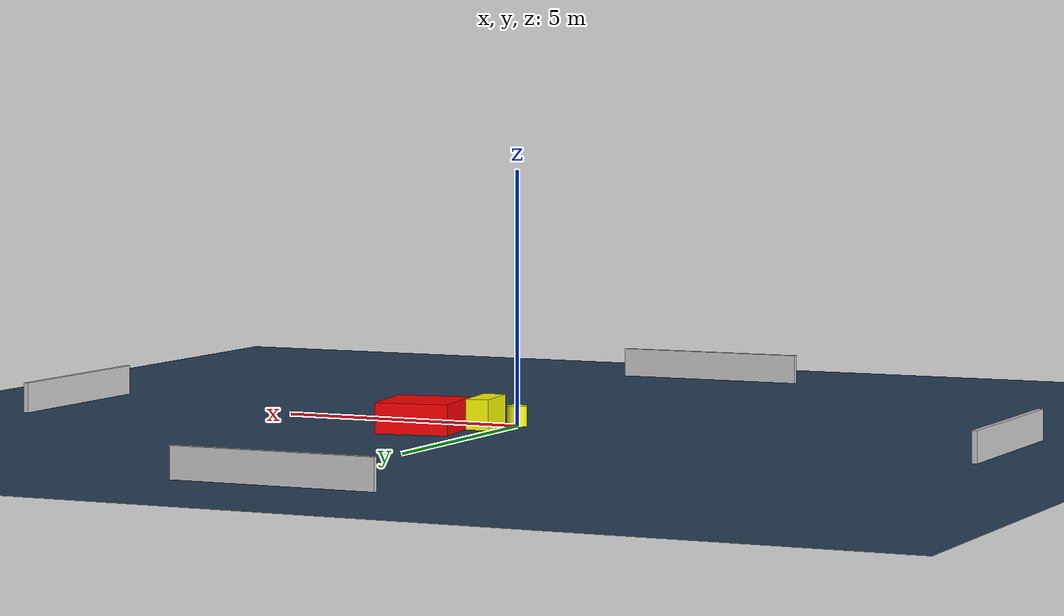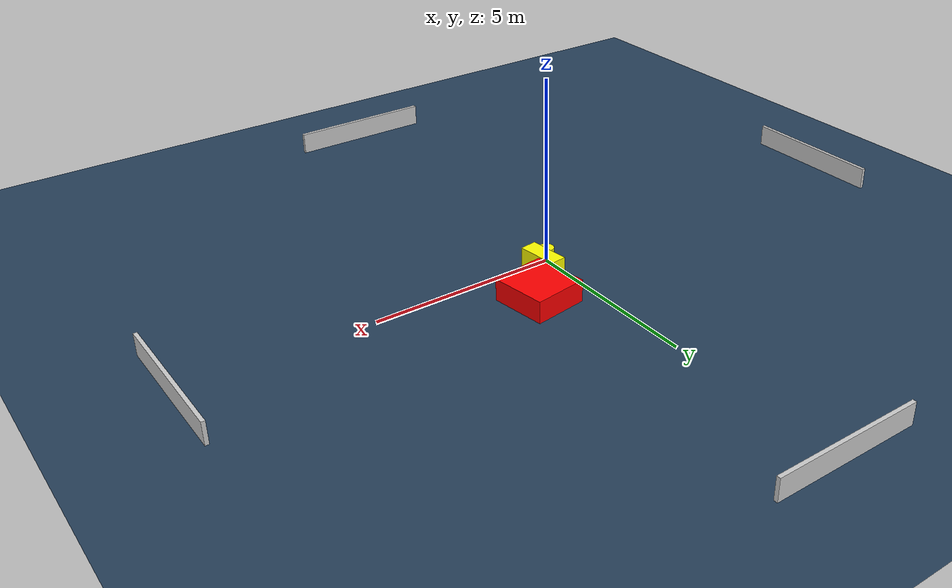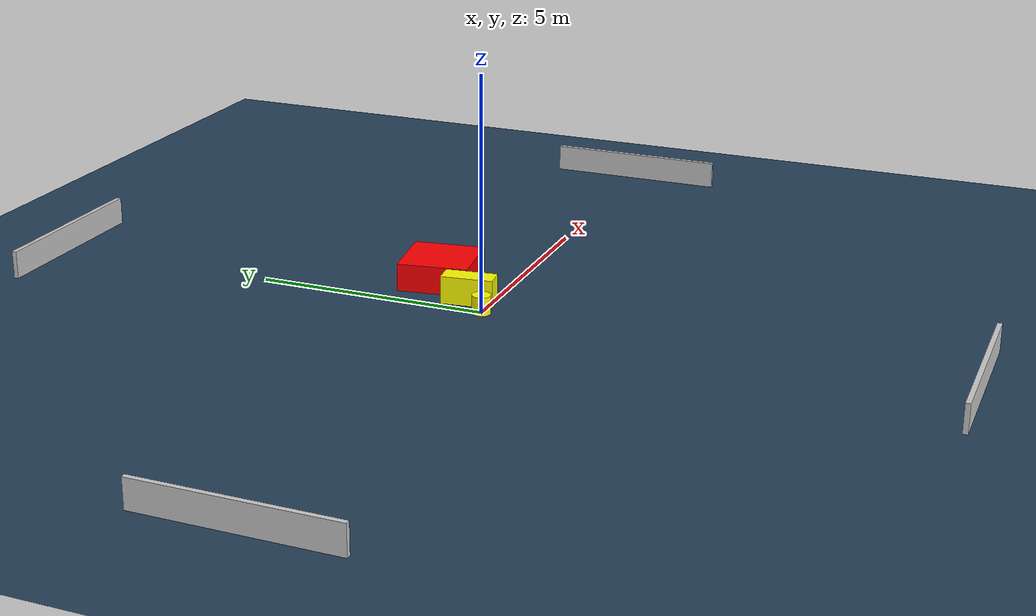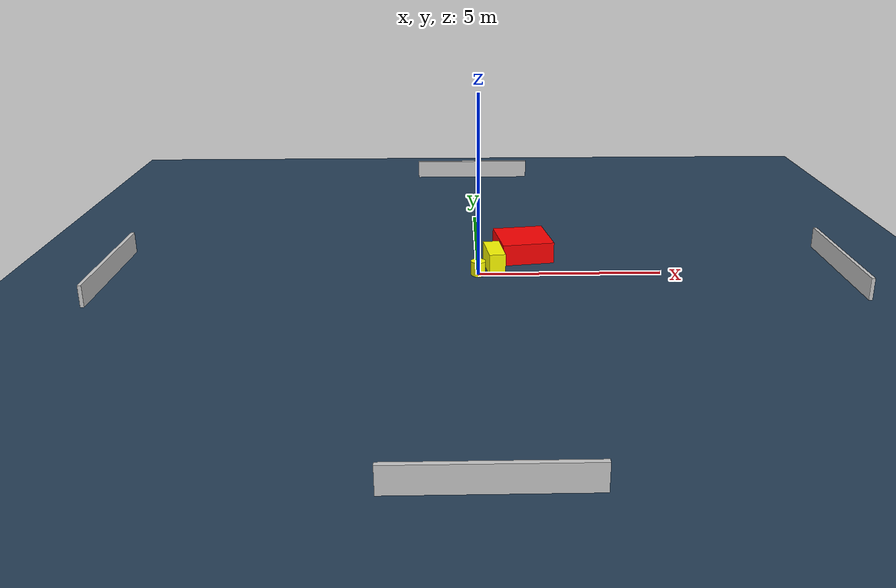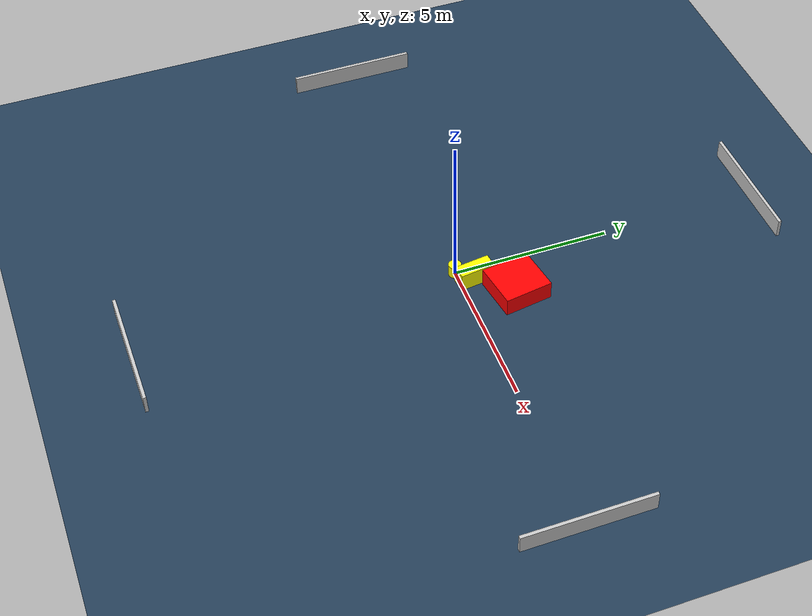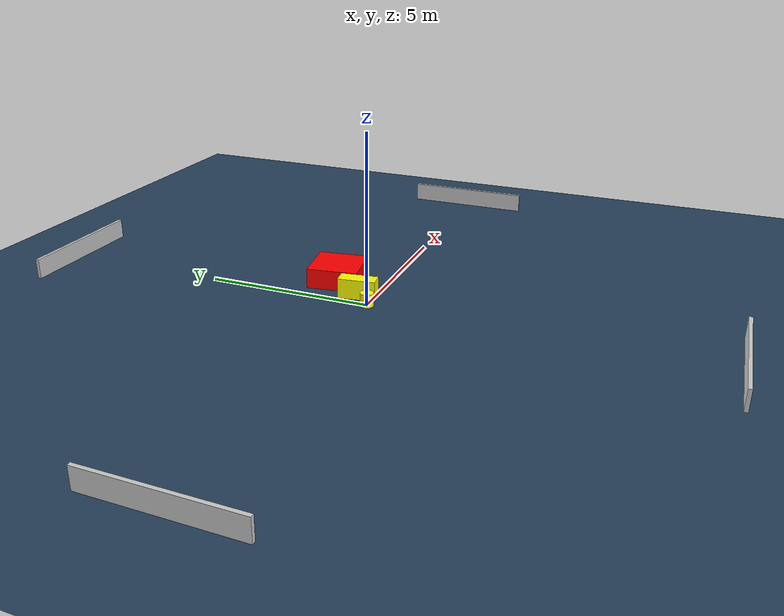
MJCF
<?xml version="1.0" ?>
<mujoco model="generated_environment">
  <option timestep="0.01" integrator="RK4" cone="elliptic"/>
  <default>
    <geom density="1"/>
  </default>
  <asset>
    <texture builtin="gradient" height="3072" name="skybox" rgb1="0.3 0.5 0.7" rgb2="0 0 0" type="skybox" width="512"/>
    <texture builtin="checker" height="300" name="groundplane" rgb1="0.2 0.3 0.4" rgb2="0.1 0.2 0.3" type="2d" width="300"/>
    <material name="groundplane" reflectance="0.2" texrepeat="5 5" texture="groundplane"/>
  </asset>
  <worldbody>
    <light dir="0 0 -1" directional="true" pos="0 0 1.5"/>
    <geom condim="3" friction="0.5 0.005 0.001" material="groundplane" name="floor" pos="0 0 0" size="0 0 0.05" type="plane"/>
    <body name="walls">
      <geom name="wall_1" condim="4" pos="-10.0 0.0 0.3" rgba="0.800000011920929 0.800000011920929 0.800000011920929 1.0" size="0.05 2.0 0.3" type="box"/>
      <geom name="wall_2" condim="4" pos="10.0 0.0 0.3" rgba="0.800000011920929 0.800000011920929 0.800000011920929 1.0" size="0.05 2.0 0.3" type="box"/>
      <geom name="wall_3" condim="4" pos="0.0 -10.0 0.3" rgba="0.800000011920929 0.800000011920929 0.800000011920929 1.0" size="2.0 0.05 0.3" type="box"/>
      <geom name="wall_4" condim="4" pos="0.0 10.0 0.3" rgba="0.800000011920929 0.800000011920929 0.800000011920929 1.0" size="2.0 0.05 0.3" type="box"/>
    </body>
    <body name="robot">
      <joint name="joint_x" type="slide" pos="0 0 0" axis="1 0 0"/>
      <joint name="joint_y" type="slide" pos="0 0 0" axis="0 1 0"/>
      <geom name="robot" type="cylinder" pos="0.0 0.0 0.2" size="0.2 0.2 0.0" mass="5.0" friction="1.0 0.005 0.0001" condim="4" rgba="1.0 1.0 0.0 1.0"/>
    </body>
    <body name="obstacle_1_movable">
      <geom name="obstacle_1_movable" condim="4" pos="0.4528043738825768 0.466979253131752 0.3" euler="0 0 7.215893919117273" friction="0.0 0.005 0.001" rgba="1.0 1.0 0.0 1.0" size="0.22450049885739876 0.5539599662507317 0.3" type="box" mass="0.1"/>
      <joint type="free"/>
    </body>
    <body name="obstacle_2_static">
      <geom name="obstacle_2_static" condim="4" pos="1.317890219771281 1.4858144563799494 0.3" euler="0 0 8.629943539173688" friction="0.0 0.005 0.001" rgba="1.0 0.0 0.0 1.0" size="0.7304029547989845 0.7630202686405307 0.3" type="box"/>
    </body>
  </worldbody>
  <actuator>
    <motor name="actuator_x" joint="joint_x" gear="1" ctrlrange="-1 1"/>
    <motor name="actuator_y" joint="joint_y" gear="1" ctrlrange="-1 1"/>
  </actuator>
</mujoco>
